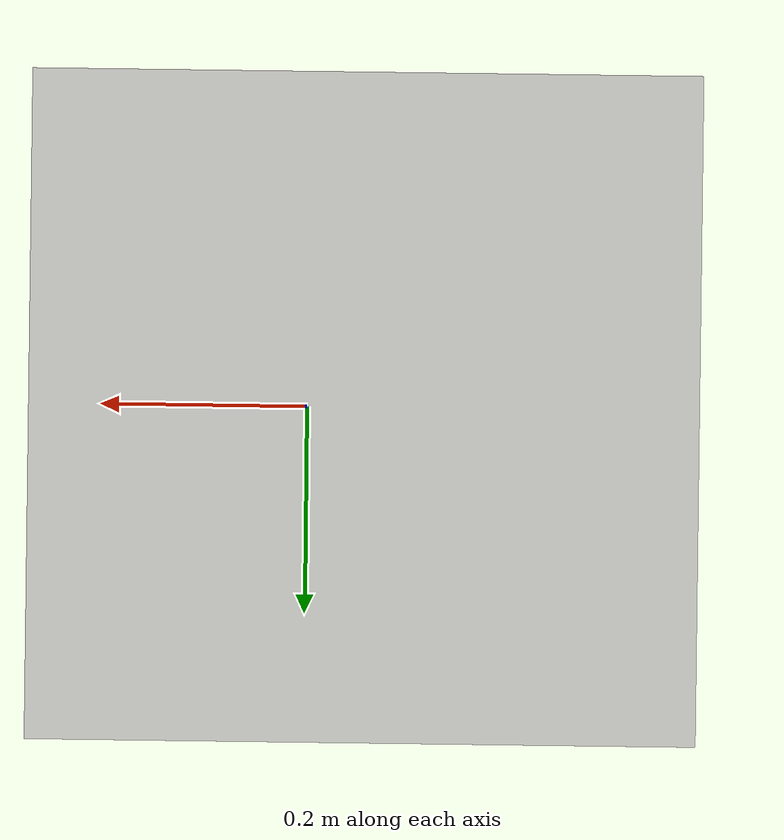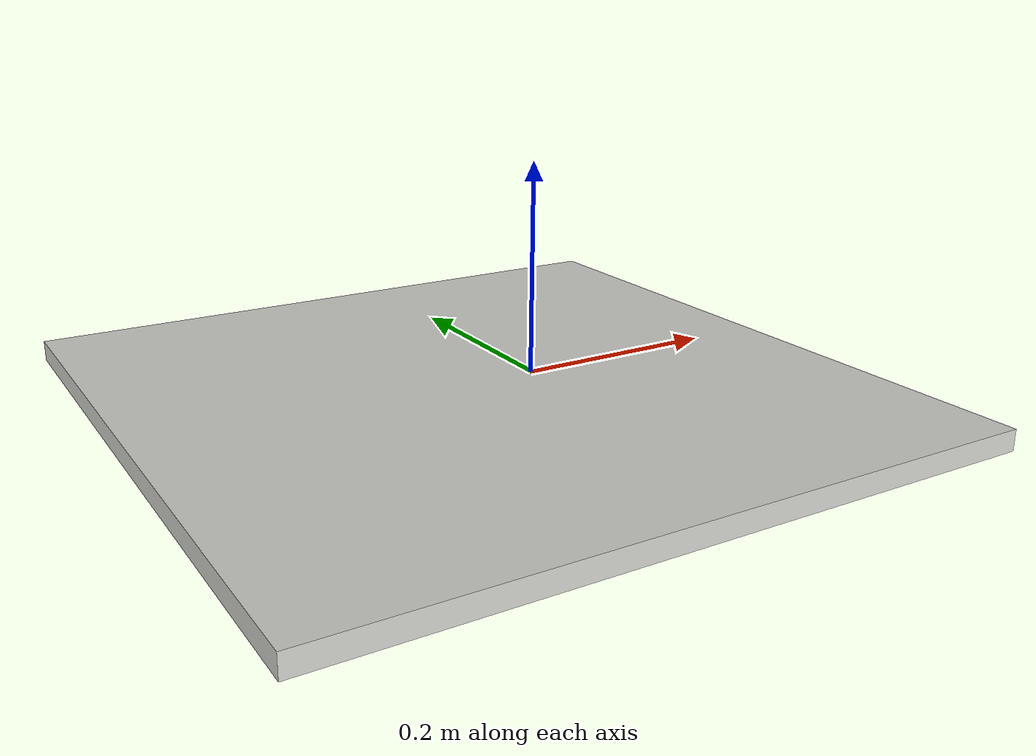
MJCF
<mujoco model="desk_mat">
  <compiler angle="radian"/>
  <asset>
    <material name="backdrop_desk" rgba="0.81 0.81 0.79 1" specular="0" shininess="0"/>
    <material name="backdrop_clutter" rgba="0.583 0.593 0.627 1" specular="0" shininess="0"/>
    <material name="backdrop_floor" rgba="0.319 0.279 0.431 1" specular="0" shininess="0"/>
    <material name="backdrop_wall" rgba="1.0 1.0 0.98 1" specular="0" shininess="0"/>
  </asset>
  <worldbody>
    <body name="mat">
      <geom name="geom" type="box" pos="-0.055 0 -0.009" size="0.325 0.325 0.010" density="800"
            rgba="0.81 0.81 0.79 1" solref="0.01 1" solimp="0.998 0.998 0.001"
            friction="0.5 0.01 0.0001" priority="1"/>
      <geom name="floor_cover" type="box" group="4" contype="0" conaffinity="0" density="0"
            pos="0.18 0 -0.0014" size="2.5 3.0 0.0005" material="backdrop_floor"/>
      <geom name="desk_skin" type="box" group="4" contype="0" conaffinity="0" density="0"
            pos="-0.055 -0.0175 0.0011" size="0.325 0.3075 0.0001" material="backdrop_desk"/>
      <geom name="floor_strip" type="box" group="4" contype="0" conaffinity="0" density="0"
            pos="-0.055 0.3075 0.0011" size="0.325 0.0175 0.0001" material="backdrop_floor"/>
      <geom name="desk_ext" type="box" group="4" contype="0" conaffinity="0" density="0"
            pos="-0.055 -0.6625 0.00005" size="0.325 0.3375 0.00095" material="backdrop_clutter"/>
      <geom name="wall" type="box" group="4" contype="0" conaffinity="0" density="0"
            pos="0.28 -0.25 0.399" size="0.01 0.85 0.4" material="backdrop_wall"/>
      <!-- THE SITE THE REGIONS ATTACH TO, on the top face — see
           `fixture.xml` for why it is site-relative and `group="3"`. -->
      <site name="surface" pos="0 0 0.001" size="0.005" group="3"/>
    </body>
  </worldbody>
</mujoco>
